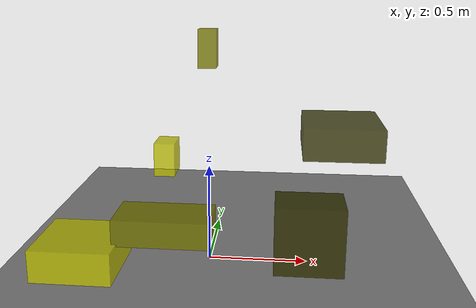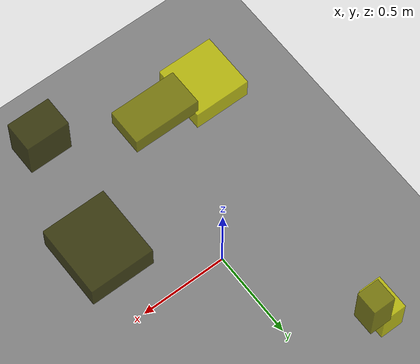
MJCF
<?xml version="1.0"?>
<mujoco model="obstacle_scene">
  <compiler angle="radian" coordinate="local"/>
  <option timestep="0.001" gravity="0 0 -9.81"/>

  <asset>
    <material name="obstacle_mat" rgba="0.8 0.8 0.0 0.8"/>
    <material name="ground_mat" rgba="0.5 0.5 0.5 1"/>
  </asset>

  <worldbody>
    <!-- Ground plane -->
    <geom name="ground" type="plane" size="3 3 0.1" material="ground_mat"/>

    <!-- Obstacles -->
    <body name="obstacle_0" pos="0.632851 -0.152172 0.721671">
      <geom name="obs_0" type="box" size="0.176891 0.197574 0.071991" rgba="0.2 0.2 0.0 0.8"/>
    </body>
    <body name="obstacle_1" pos="-0.096852 -0.686887 0.471026">
      <geom name="obs_1" type="box" size="0.193017 0.105844 0.053438" rgba="0.5 0.5 0.0 0.8"/>
    </body>
    <body name="obstacle_2" pos="-0.370840 0.786911 0.308658">
      <geom name="obs_2" type="box" size="0.065105 0.098613 0.104640" rgba="0.8 0.8 0.0 0.8"/>
    </body>
    <body name="obstacle_3" pos="0.463714 -0.893312 0.549502">
      <geom name="obs_3" type="box" size="0.122426 0.086968 0.124416" rgba="0.2 0.2 0.0 0.8"/>
    </body>
    <body name="obstacle_4" pos="-0.121087 0.955657 0.986214">
      <geom name="obs_4" type="box" size="0.058436 0.059840 0.122387" rgba="0.5 0.5 0.0 0.8"/>
    </body>
    <body name="obstacle_5" pos="-0.432945 -0.721674 0.360377">
      <geom name="obs_5" type="box" size="0.162118 0.161232 0.066011" rgba="0.8 0.8 0.0 0.8"/>
    </body>
  </worldbody>
</mujoco>
